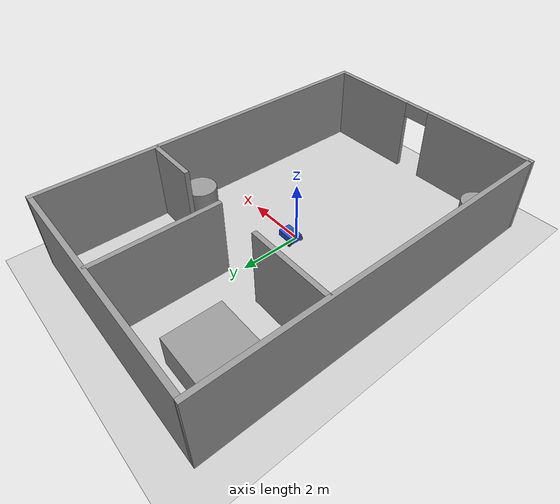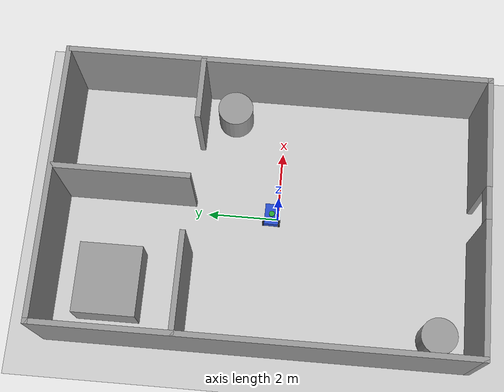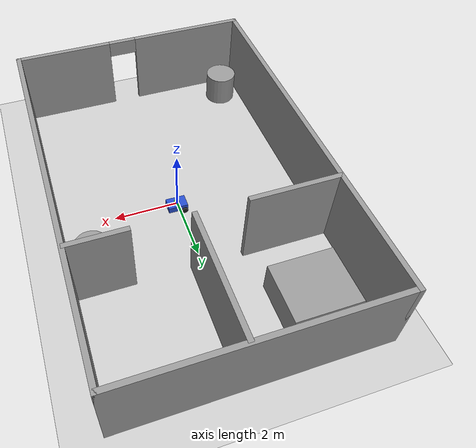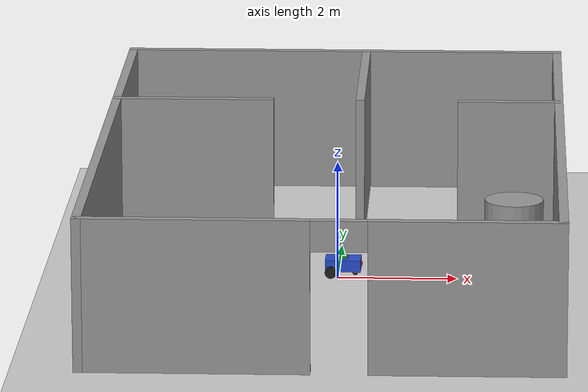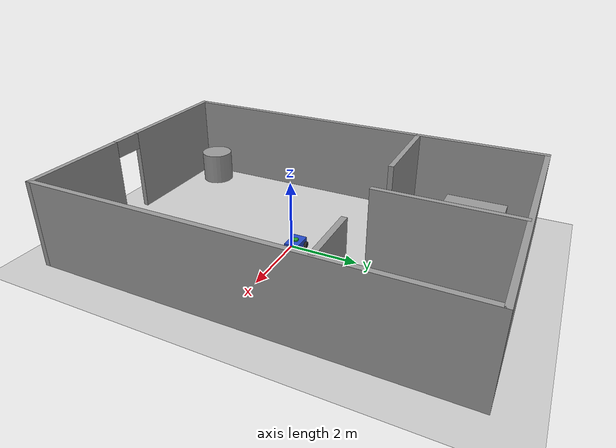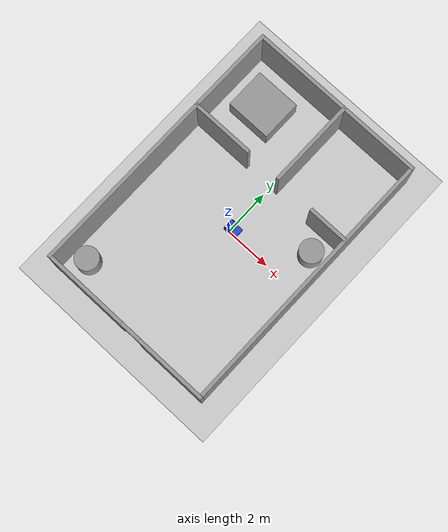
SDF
<sdf version="1.7">
 <world name="default">
  <light name="sun" type="directional">
   <pose>0 0 10 0 -0 0</pose>
   <diffuse>0.8 0.8 0.8 1</diffuse>
   <specular>0.2 0.2 0.2 1</specular>
   <attenuation>
    <range>1000</range>
    <constant>0.9</constant>
    <linear>0.01</linear>
    <quadratic>0.001</quadratic>
   </attenuation>
   <direction>-0.5 0.1 -0.9</direction>
   <spot><inner_angle>0</inner_angle><outer_angle>0</outer_angle><falloff>0</falloff></spot>
  </light>
  <model name="ground_plane">
   <static>1</static>
   <link name="link">
    <collision name="collision">
     <geometry><plane><normal>0 0 1</normal><size>100 100</size></plane></geometry>
     <surface><friction><ode><mu>100</mu><mu2>50</mu2></ode></friction></surface>
    </collision>
    <visual name="visual">
     <cast_shadows>0</cast_shadows>
     <geometry><plane><normal>0 0 1</normal><size>100 100</size></plane></geometry>
     <material>
      <script><uri>file://media/materials/scripts/gazebo.material</uri><name>Gazebo/Grey</name></script>
     </material>
    </visual>
   </link>
  </model>
  <gravity>0 0 -9.8</gravity>
  <magnetic_field>6e-06 2.3e-05 -4.2e-05</magnetic_field>
  <atmosphere type="adiabatic"/>
  <physics type="ode">
   <max_step_size>0.001</max_step_size>
   <real_time_factor>1</real_time_factor>
   <real_time_update_rate>1000</real_time_update_rate>
  </physics>
  <scene><ambient>0.4 0.4 0.4 1</ambient><background>0.7 0.7 0.7 1</background><shadows>1</shadows></scene>
  <audio><device>default</device></audio>
  <spherical_coordinates>
   <surface_model>EARTH_WGS84</surface_model>
   <latitude_deg>0</latitude_deg>
   <longitude_deg>0</longitude_deg>
   <elevation>0</elevation>
   <heading_deg>0</heading_deg>
  </spherical_coordinates>
  <model name="home.world">
   <pose>-0.095182 0.3053 0 0 -0 0</pose>
   <link name="Wall_0">
    <collision name="Wall_0_Collision">
     <geometry><box><size>7.75 0.15 2.5</size></box></geometry>
     <pose>0 0 1.25 0 -0 0</pose>
    </collision>
    <visual name="Wall_0_Visual">
     <pose>0 0 1.25 0 -0 0</pose>
     <geometry><box><size>7.75 0.15 2.5</size></box></geometry>
     <material>
      <script><uri>file://media/materials/scripts/gazebo.material</uri><name>Gazebo/Grey</name></script>
      <ambient>1 1 1 1</ambient>
     </material>
     <meta><layer>0</layer></meta>
    </visual>
    <pose>-0 5.8 0 0 -0 0</pose>
   </link>
   <link name="Wall_1">
    <collision name="Wall_1_Collision">
     <geometry><box><size>11.75 0.15 2.5</size></box></geometry>
     <pose>0 0 1.25 0 -0 0</pose>
    </collision>
    <visual name="Wall_1_Visual">
     <pose>0 0 1.25 0 -0 0</pose>
     <geometry><box><size>11.75 0.15 2.5</size></box></geometry>
     <material>
      <script><uri>file://media/materials/scripts/gazebo.material</uri><name>Gazebo/Grey</name></script>
      <ambient>1 1 1 1</ambient>
     </material>
     <meta><layer>0</layer></meta>
    </visual>
    <pose>3.8 0 0 0 -0 -1.5708</pose>
   </link>
   <link name="Wall_10">
    <collision name="Wall_10_Collision">
     <geometry><box><size>2.75 0.15 2.5</size></box></geometry>
     <pose>0 0 1.25 0 -0 0</pose>
    </collision>
    <visual name="Wall_10_Visual">
     <pose>0 0 1.25 0 -0 0</pose>
     <geometry><box><size>2.75 0.15 2.5</size></box></geometry>
     <material>
      <script><uri>file://media/materials/scripts/gazebo.material</uri><name>Gazebo/Grey</name></script>
      <ambient>1 1 1 1</ambient>
     </material>
     <meta><layer>0</layer></meta>
    </visual>
    <pose>-2.47435 2.10257 0 0 -0 0</pose>
   </link>
   <link name="Wall_2">
    <pose>-0 -5.8 0 0 -0 3.14159</pose>
    <visual name="Wall_2_Visual_0">
     <pose>-2.31456 0 1.25 0 -0 0</pose>
     <geometry><box><size>3.12088 0.15 2.5</size></box></geometry>
     <material>
      <script><uri>file://media/materials/scripts/gazebo.material</uri><name>Gazebo/Grey</name></script>
      <ambient>1 1 1 1</ambient>
     </material>
     <meta><layer>0</layer></meta>
    </visual>
    <collision name="Wall_2_Collision_0">
     <geometry><box><size>3.12088 0.15 2.5</size></box></geometry>
     <pose>-2.31456 0 1.25 0 -0 0</pose>
    </collision>
    <visual name="Wall_2_Visual_1">
     <pose>2.01044 0 1.25 0 -0 0</pose>
     <geometry><box><size>3.72912 0.15 2.5</size></box></geometry>
     <material>
      <script><uri>file://media/materials/scripts/gazebo.material</uri><name>Gazebo/Grey</name></script>
      <ambient>1 1 1 1</ambient>
     </material>
     <meta><layer>0</layer></meta>
    </visual>
    <collision name="Wall_2_Collision_1">
     <geometry><box><size>3.72912 0.15 2.5</size></box></geometry>
     <pose>2.01044 0 1.25 0 -0 0</pose>
    </collision>
    <visual name="Wall_2_Visual_2">
     <pose>-0.304119 0 2.25 0 -0 0</pose>
     <geometry><box><size>0.9 0.15 0.5</size></box></geometry>
     <material>
      <script><uri>file://media/materials/scripts/gazebo.material</uri><name>Gazebo/Grey</name></script>
      <ambient>1 1 1 1</ambient>
     </material>
     <meta><layer>0</layer></meta>
    </visual>
    <collision name="Wall_2_Collision_2">
     <geometry><box><size>0.9 0.15 0.5</size></box></geometry>
     <pose>-0.304119 0 2.25 0 -0 0</pose>
    </collision>
   </link>
   <link name="Wall_3">
    <collision name="Wall_3_Collision">
     <geometry><box><size>11.75 0.15 2.5</size></box></geometry>
     <pose>0 0 1.25 0 -0 0</pose>
    </collision>
    <visual name="Wall_3_Visual">
     <pose>0 0 1.25 0 -0 0</pose>
     <geometry><box><size>11.75 0.15 2.5</size></box></geometry>
     <material>
      <script><uri>file://media/materials/scripts/gazebo.material</uri><name>Gazebo/Grey</name></script>
      <ambient>1 1 1 1</ambient>
     </material>
     <meta><layer>0</layer></meta>
    </visual>
    <pose>-3.8 0 0 0 -0 1.5708</pose>
   </link>
   <link name="Wall_5">
    <collision name="Wall_5_Collision">
     <geometry><box><size>3.75 0.15 2.5</size></box></geometry>
     <pose>0 0 1.25 0 -0 0</pose>
    </collision>
    <visual name="Wall_5_Visual">
     <pose>0 0 1.25 0 -0 0</pose>
     <geometry><box><size>3.75 0.15 2.5</size></box></geometry>
     <material>
      <script><uri>file://media/materials/scripts/gazebo.material</uri><name>Gazebo/Grey</name></script>
      <ambient>1 1 1 1</ambient>
     </material>
     <meta><layer>0</layer></meta>
    </visual>
    <pose>0.389161 3.93408 0 0 -0 -1.5708</pose>
   </link>
   <link name="Wall_8">
    <collision name="Wall_8_Collision">
     <geometry><box><size>1.75 0.15 2.5</size></box></geometry>
     <pose>0 0 1.25 0 -0 0</pose>
    </collision>
    <visual name="Wall_8_Visual">
     <pose>0 0 1.25 0 -0 0</pose>
     <geometry><box><size>1.75 0.15 2.5</size></box></geometry>
     <material>
      <script><uri>file://media/materials/scripts/gazebo.material</uri><name>Gazebo/Grey</name></script>
      <ambient>1 1 1 1</ambient>
     </material>
     <meta><layer>0</layer></meta>
    </visual>
    <pose>2.9431 2.05631 0 0 -0 3.14159</pose>
   </link>
   <static>1</static>
  </model>
  <model name="unit_box">
   <pose>-2.3325 4.4786 0.499988 0 -1.3e-05 0</pose>
   <link name="link">
    <inertial>
     <mass>1</mass>
     <inertia>
      <ixx>0.166667</ixx>
      <ixy>0</ixy>
      <ixz>0</ixz>
      <iyy>0.166667</iyy>
      <iyz>0</iyz>
      <izz>0.166667</izz>
     </inertia>
    </inertial>
    <collision name="collision"><geometry><box><size>1.96035 1.74533 1</size></box></geometry></collision>
    <visual name="visual">
     <geometry><box><size>1.96035 1.74533 1</size></box></geometry>
     <material>
      <script><name>Gazebo/Grey</name><uri>file://media/materials/scripts/gazebo.material</uri></script>
     </material>
    </visual>
   </link>
  </model>
  <model name="unit_cylinder">
   <pose>2.95221 1.46319 0.499992 -3e-06 2e-06 0</pose>
   <link name="link">
    <inertial>
     <mass>1</mass>
     <inertia><ixx>0.145833</ixx><ixy>0</ixy><ixz>0</ixz><iyy>0.145833</iyy><iyz>0</iyz><izz>0.125</izz></inertia>
    </inertial>
    <collision name="collision">
     <geometry><cylinder><radius>0.5</radius><length>1</length></cylinder></geometry>
    </collision>
    <visual name="visual">
     <geometry><cylinder><radius>0.5</radius><length>1</length></cylinder></geometry>
     <material>
      <script><name>Gazebo/Grey</name><uri>file://media/materials/scripts/gazebo.material</uri></script>
     </material>
    </visual>
   </link>
  </model>
  <model name="unit_cylinder_0">
   <pose>-3.13514 -4.56938 0.499992 -3e-06 4e-06 0</pose>
   <link name="link">
    <inertial>
     <mass>1</mass>
     <inertia><ixx>0.145833</ixx><ixy>0</ixy><ixz>0</ixz><iyy>0.145833</iyy><iyz>0</iyz><izz>0.125</izz></inertia>
    </inertial>
    <collision name="collision">
     <geometry><cylinder><radius>0.5</radius><length>1</length></cylinder></geometry>
    </collision>
    <visual name="visual">
     <geometry><cylinder><radius>0.5</radius><length>1</length></cylinder></geometry>
     <material>
      <script><name>Gazebo/Grey</name><uri>file://media/materials/scripts/gazebo.material</uri></script>
     </material>
    </visual>
   </link>
  </model>
  <model name="my_robot">
   <link name="base_footprint">
    <inertial>
     <pose>0.040323 0 0.191774 0 -0 0</pose>
     <mass>6.2</mass>
     <inertia>
      <ixx>0.351324</ixx>
      <ixy>0</ixy>
      <ixz>0.0129435</ixz>
      <iyy>0.939577</iyy>
      <iyz>0</iyz>
      <izz>0.726979</izz>
     </inertia>
    </inertial>
    <collision name="base_footprint_fixed_joint_lump__base_link_collision">
     <pose>0 0 0.2 0 -0 0</pose>
     <geometry><box><size>0.6 0.4 0.2</size></box></geometry>
     <surface><friction><ode><mu>0.1</mu><mu2>0.1</mu2></ode></friction></surface>
    </collision>
    <collision name="base_footprint_fixed_joint_lump__camera_link_collision_1">
     <pose>0.3 0 0.2 0 -0 0</pose>
     <geometry><box><size>0.05 0.05 0.05</size></box></geometry>
     <surface><friction><ode><mu>0.1</mu><mu2>0.1</mu2></ode></friction></surface>
    </collision>
    <collision name="base_footprint_fixed_joint_lump__caster_wheel_link_collision_2">
     <pose>0.2 0 0.05 0 -0 0</pose>
     <geometry><sphere><radius>0.05</radius></sphere></geometry>
     <surface><friction><ode><mu>0.1</mu><mu2>0.1</mu2></ode></friction></surface>
    </collision>
    <collision name="base_footprint_fixed_joint_lump__lidar_link_collision_3">
     <pose>0 0 0.32 0 -0 0</pose>
     <geometry><cylinder><length>0.05</length><radius>0.08</radius></cylinder></geometry>
     <surface><friction><ode><mu>0.1</mu><mu2>0.1</mu2></ode></friction></surface>
    </collision>
    <visual name="base_footprint_fixed_joint_lump__base_link_visual">
     <pose>0 0 0.2 0 -0 0</pose>
     <geometry><box><size>0.6 0.4 0.2</size></box></geometry>
     <material>
      <script><name>Gazebo/Blue</name><uri>file://media/materials/scripts/gazebo.material</uri></script>
     </material>
    </visual>
    <visual name="base_footprint_fixed_joint_lump__camera_link_visual_1">
     <pose>0.3 0 0.2 0 -0 0</pose>
     <geometry><box><size>0.05 0.05 0.05</size></box></geometry>
     <material>
      <script><name>Gazebo/Red</name><uri>file://media/materials/scripts/gazebo.material</uri></script>
     </material>
    </visual>
    <visual name="base_footprint_fixed_joint_lump__caster_wheel_link_visual_2">
     <pose>0.2 0 0.05 0 -0 0</pose>
     <geometry><sphere><radius>0.05</radius></sphere></geometry>
     <material>
      <script><name>Gazebo/Black</name><uri>file://media/materials/scripts/gazebo.material</uri></script>
     </material>
    </visual>
    <visual name="base_footprint_fixed_joint_lump__lidar_link_visual_3">
     <pose>0 0 0.32 0 -0 0</pose>
     <geometry><cylinder><length>0.05</length><radius>0.08</radius></cylinder></geometry>
     <material>
      <script><name>Gazebo/Green</name><uri>file://media/materials/scripts/gazebo.material</uri></script>
     </material>
    </visual>
    <sensor name="camera_sensor" type="camera">
     <visualize>1</visualize>
     <update_rate>10</update_rate>
     <plugin name="camera_controller" filename="libgazebo_ros_camera.so">
      <frameName>camera_link</frameName>
     </plugin>
     <pose>0.3 0 0.2 0 -0 0</pose>
     <camera>
      <horizontal_fov>1.047</horizontal_fov>
      <image><width>320</width><height>240</height></image>
      <clip><near>0.1</near><far>100</far></clip>
     </camera>
    </sensor>
    <sensor name="lidar_sensor" type="ray">
     <visualize>1</visualize>
     <update_rate>10</update_rate>
     <ray>
      <scan>
       <horizontal>
        <samples>720</samples>
        <min_angle>-3.14</min_angle>
        <max_angle>3.14</max_angle>
        <resolution>1</resolution>
       </horizontal>
       <vertical><samples>1</samples><min_angle>0</min_angle><max_angle>0</max_angle></vertical>
      </scan>
      <range><min>0.1</min><max>30</max></range>
     </ray>
     <plugin name="lidar_controller" filename="libgazebo_ros_ray_sensor.so">
      <output_type>sensor_msgs/LaserScan</output_type>
     </plugin>
     <pose>0 0 0.32 0 -0 0</pose>
    </sensor>
   </link>
   <joint name="base_to_left_wheel_joint" type="revolute">
    <pose relative_to="base_footprint">-0.2 -0.225 0.1 0 -0 0</pose>
    <parent>base_footprint</parent>
    <child>left_wheel_link</child>
    <axis>
     <xyz>0 1 0</xyz>
     <limit><lower>-1e+16</lower><upper>1e+16</upper></limit>
     <dynamics><spring_reference>0</spring_reference><spring_stiffness>0</spring_stiffness></dynamics>
    </axis>
   </joint>
   <link name="left_wheel_link">
    <pose relative_to="base_to_left_wheel_joint">0 0 0 0 -0 0</pose>
    <inertial>
     <pose>0 0 0 1.5708 -0 0</pose>
     <mass>1</mass>
     <inertia><ixx>0.0108333</ixx><ixy>0</ixy><ixz>0</ixz><iyy>0.0108333</iyy><iyz>0</iyz><izz>0.02</izz></inertia>
    </inertial>
    <collision name="left_wheel_link_collision">
     <pose>0 0 0 1.5708 -0 0</pose>
     <geometry><cylinder><length>0.05</length><radius>0.1</radius></cylinder></geometry>
     <surface><friction><ode><mu>0.1</mu><mu2>0.1</mu2></ode></friction></surface>
    </collision>
    <visual name="left_wheel_link_visual">
     <pose>0 0 0 1.5708 -0 0</pose>
     <geometry><cylinder><length>0.05</length><radius>0.1</radius></cylinder></geometry>
     <material>
      <script><name>Gazebo/Black</name><uri>file://media/materials/scripts/gazebo.material</uri></script>
     </material>
    </visual>
   </link>
   <joint name="base_to_right_wheel_joint" type="revolute">
    <pose relative_to="base_footprint">-0.2 0.225 0.1 0 -0 0</pose>
    <parent>base_footprint</parent>
    <child>right_wheel_link</child>
    <axis>
     <xyz>0 1 0</xyz>
     <limit><lower>-1e+16</lower><upper>1e+16</upper></limit>
     <dynamics><spring_reference>0</spring_reference><spring_stiffness>0</spring_stiffness></dynamics>
    </axis>
   </joint>
   <link name="right_wheel_link">
    <pose relative_to="base_to_right_wheel_joint">0 0 0 0 -0 0</pose>
    <inertial>
     <pose>0 0 0 1.5708 -0 0</pose>
     <mass>1</mass>
     <inertia><ixx>0.0108333</ixx><ixy>0</ixy><ixz>0</ixz><iyy>0.0108333</iyy><iyz>0</iyz><izz>0.02</izz></inertia>
    </inertial>
    <collision name="right_wheel_link_collision">
     <pose>0 0 0 1.5708 -0 0</pose>
     <geometry><cylinder><length>0.05</length><radius>0.1</radius></cylinder></geometry>
     <surface><friction><ode><mu>0.1</mu><mu2>0.1</mu2></ode></friction></surface>
    </collision>
    <visual name="right_wheel_link_visual">
     <pose>0 0 0 1.5708 -0 0</pose>
     <geometry><cylinder><length>0.05</length><radius>0.1</radius></cylinder></geometry>
     <material>
      <script><name>Gazebo/Black</name><uri>file://media/materials/scripts/gazebo.material</uri></script>
     </material>
    </visual>
   </link>
   <static>0</static>
   <plugin name="diff_drive_controller" filename="libgazebo_ros_diff_drive.so">
    <update_rate>50</update_rate>
    <left_joint>base_to_left_wheel_joint</left_joint>
    <right_joint>base_to_right_wheel_joint</right_joint>
    <wheel_separation>0.45</wheel_separation>
    <wheel_diameter>0.2</wheel_diameter>
    <publish_odom>1</publish_odom>
    <publish_odom_tf>1</publish_odom_tf>
    <publish_wheel_tf>1</publish_wheel_tf>
    <odometry_topic>odom</odometry_topic>
    <odometry_frame>odom</odometry_frame>
    <robot_base_frame>base_footprint</robot_base_frame>
   </plugin>
   <pose>0.082071 0.182913 0 0 0 -0.014487</pose>
  </model>
 </world>
</sdf>
